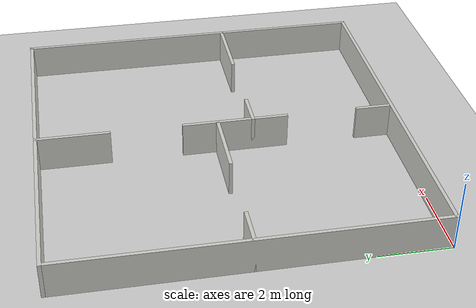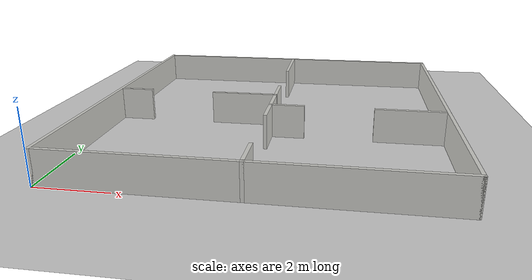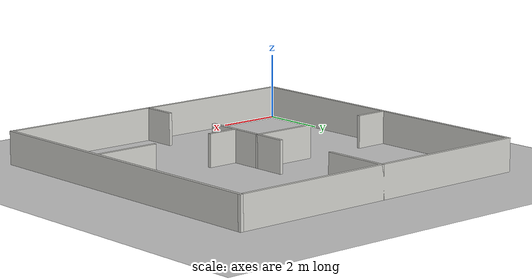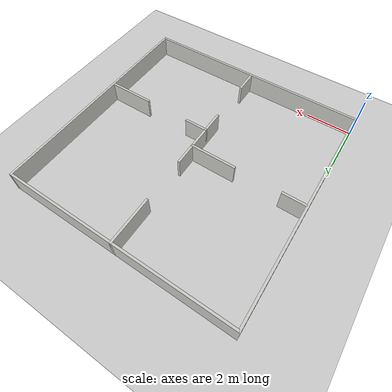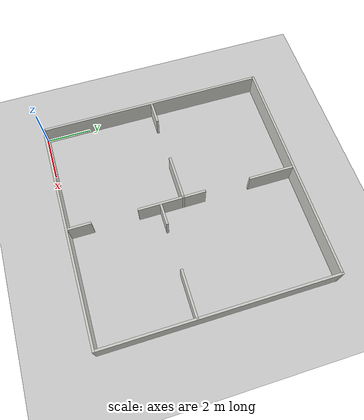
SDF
<sdf version="1.7">
 <world name="default">
  <light name="sun" type="directional">
   <pose>0 0 10 0 -0 0</pose>
   <diffuse>0.8 0.8 0.8 1</diffuse>
   <specular>0.2 0.2 0.2 1</specular>
   <attenuation>
    <range>1000</range>
    <constant>0.9</constant>
    <linear>0.01</linear>
    <quadratic>0.001</quadratic>
   </attenuation>
   <direction>-0.5 0.1 -0.9</direction>
   <spot><inner_angle>0</inner_angle><outer_angle>0</outer_angle><falloff>0</falloff></spot>
  </light>
  <model name="ground_plane">
   <static>1</static>
   <link name="link">
    <collision name="collision">
     <geometry><plane><normal>0 0 1</normal><size>100 100</size></plane></geometry>
     <surface><friction><ode><mu>100</mu><mu2>50</mu2></ode></friction></surface>
    </collision>
    <visual name="visual">
     <cast_shadows>0</cast_shadows>
     <geometry><plane><normal>0 0 1</normal><size>100 100</size></plane></geometry>
     <material>
      <script><uri>file://media/materials/scripts/gazebo.material</uri><name>Gazebo/Grey</name></script>
     </material>
    </visual>
   </link>
  </model>
  <gravity>0 0 -9.8</gravity>
  <magnetic_field>6e-06 2.3e-05 -4.2e-05</magnetic_field>
  <atmosphere type="adiabatic"/>
  <physics type="ode">
   <max_step_size>0.001</max_step_size>
   <real_time_factor>1</real_time_factor>
   <real_time_update_rate>1000</real_time_update_rate>
  </physics>
  <scene><ambient>0.4 0.4 0.4 1</ambient><background>0.7 0.7 0.7 1</background><shadows>1</shadows></scene>
  <spherical_coordinates>
   <surface_model>EARTH_WGS84</surface_model>
   <latitude_deg>0</latitude_deg>
   <longitude_deg>0</longitude_deg>
   <elevation>0</elevation>
   <heading_deg>0</heading_deg>
  </spherical_coordinates>
  <model name="FourRooms">
   <pose>5.1 5.1 0 0 -0 0</pose>
   <link name="Wall_0">
    <collision name="Wall_0_Collision">
     <geometry><box><size>10.2 0.1 1</size></box></geometry>
     <pose>0 0 0.5 0 -0 0</pose>
    </collision>
    <visual name="Wall_0_Visual">
     <pose>0 0 0.5 0 -0 0</pose>
     <geometry><box><size>10.2 0.1 1</size></box></geometry>
     <material>
      <script><uri>file://media/materials/scripts/gazebo.material</uri><name>Gazebo/CeilingTiled</name></script>
      <ambient>0.435294 0.796078 0.67451 1</ambient>
     </material>
     <meta><layer>0</layer></meta>
    </visual>
    <pose>0 -5.05 0 0 -0 0</pose>
   </link>
   <link name="Wall_11">
    <collision name="Wall_11_Collision">
     <geometry><box><size>1.1 0.1 1</size></box></geometry>
     <pose>0 0 0.5 0 -0 0</pose>
    </collision>
    <visual name="Wall_11_Visual">
     <pose>0 0 0.5 0 -0 0</pose>
     <geometry><box><size>1.1 0.1 1</size></box></geometry>
     <material>
      <script><uri>file://media/materials/scripts/gazebo.material</uri><name>Gazebo/CeilingTiled</name></script>
      <ambient>0.435294 0.796078 0.67451 1</ambient>
     </material>
     <meta><layer>0</layer></meta>
    </visual>
    <pose>-4.55 0 0 0 -0 0</pose>
   </link>
   <link name="Wall_13">
    <collision name="Wall_13_Collision">
     <geometry><box><size>2.05 0.1 1</size></box></geometry>
     <pose>0 0 0.5 0 -0 0</pose>
    </collision>
    <visual name="Wall_13_Visual">
     <pose>0 0 0.5 0 -0 0</pose>
     <geometry><box><size>2.05 0.1 1</size></box></geometry>
     <material>
      <script><uri>file://media/materials/scripts/gazebo.material</uri><name>Gazebo/CeilingTiled</name></script>
      <ambient>0.435294 0.796078 0.67451 1</ambient>
     </material>
     <meta><layer>0</layer></meta>
    </visual>
    <pose>-0.975 0 0 0 -0 0</pose>
   </link>
   <link name="Wall_15">
    <collision name="Wall_15_Collision">
     <geometry><box><size>2.1 0.1 1</size></box></geometry>
     <pose>0 0 0.5 0 -0 0</pose>
    </collision>
    <visual name="Wall_15_Visual">
     <pose>0 0 0.5 0 -0 0</pose>
     <geometry><box><size>2.1 0.1 1</size></box></geometry>
     <material>
      <script><uri>file://media/materials/scripts/gazebo.material</uri><name>Gazebo/CeilingTiled</name></script>
      <ambient>0.435294 0.796078 0.67451 1</ambient>
     </material>
     <meta><layer>0</layer></meta>
    </visual>
    <pose>0 4.05 0 0 -0 -1.5708</pose>
   </link>
   <link name="Wall_17">
    <collision name="Wall_17_Collision">
     <geometry><box><size>1.05 0.1 1</size></box></geometry>
     <pose>0 0 0.5 0 -0 0</pose>
    </collision>
    <visual name="Wall_17_Visual">
     <pose>0 0 0.5 0 -0 0</pose>
     <geometry><box><size>1.05 0.1 1</size></box></geometry>
     <material>
      <script><uri>file://media/materials/scripts/gazebo.material</uri><name>Gazebo/CeilingTiled</name></script>
      <ambient>0.435294 0.796078 0.67451 1</ambient>
     </material>
     <meta><layer>0</layer></meta>
    </visual>
    <pose>0 0.475 0 0 -0 -1.5708</pose>
   </link>
   <link name="Wall_19">
    <collision name="Wall_19_Collision">
     <geometry><box><size>2.1 0.1 1</size></box></geometry>
     <pose>0 0 0.5 0 -0 0</pose>
    </collision>
    <visual name="Wall_19_Visual">
     <pose>0 0 0.5 0 -0 0</pose>
     <geometry><box><size>2.1 0.1 1</size></box></geometry>
     <material>
      <script><uri>file://media/materials/scripts/gazebo.material</uri><name>Gazebo/CeilingTiled</name></script>
      <ambient>0.435294 0.796078 0.67451 1</ambient>
     </material>
     <meta><layer>0</layer></meta>
    </visual>
    <pose>4.05 -1 0 0 -0 3.14159</pose>
   </link>
   <link name="Wall_2">
    <collision name="Wall_2_Collision">
     <geometry><box><size>10.2 0.1 1</size></box></geometry>
     <pose>0 0 0.5 0 -0 0</pose>
    </collision>
    <visual name="Wall_2_Visual">
     <pose>0 0 0.5 0 -0 0</pose>
     <geometry><box><size>10.2 0.1 1</size></box></geometry>
     <material>
      <script><uri>file://media/materials/scripts/gazebo.material</uri><name>Gazebo/CeilingTiled</name></script>
      <ambient>0.435294 0.796078 0.67451 1</ambient>
     </material>
     <meta><layer>0</layer></meta>
    </visual>
    <pose>5.05 0 0 0 -0 1.5708</pose>
   </link>
   <link name="Wall_21">
    <collision name="Wall_21_Collision">
     <geometry><box><size>1.05 0.1 1</size></box></geometry>
     <pose>0 0 0.5 0 -0 0</pose>
    </collision>
    <visual name="Wall_21_Visual">
     <pose>0 0 0.5 0 -0 0</pose>
     <geometry><box><size>1.05 0.1 1</size></box></geometry>
     <material>
      <script><uri>file://media/materials/scripts/gazebo.material</uri><name>Gazebo/CeilingTiled</name></script>
      <ambient>0.435294 0.796078 0.67451 1</ambient>
     </material>
     <meta><layer>0</layer></meta>
    </visual>
    <pose>0.475 -1 0 0 -0 0</pose>
   </link>
   <link name="Wall_23">
    <collision name="Wall_23_Collision">
     <geometry><box><size>1.1 0.1 1</size></box></geometry>
     <pose>0 0 0.5 0 -0 0</pose>
    </collision>
    <visual name="Wall_23_Visual">
     <pose>0 0 0.5 0 -0 0</pose>
     <geometry><box><size>1.1 0.1 1</size></box></geometry>
     <material>
      <script><uri>file://media/materials/scripts/gazebo.material</uri><name>Gazebo/CeilingTiled</name></script>
      <ambient>0.435294 0.796078 0.67451 1</ambient>
     </material>
     <meta><layer>0</layer></meta>
    </visual>
    <pose>0 -4.55 0 0 -0 1.5708</pose>
   </link>
   <link name="Wall_25">
    <collision name="Wall_25_Collision">
     <geometry><box><size>2.05 0.1 1</size></box></geometry>
     <pose>0 0 0.5 0 -0 0</pose>
    </collision>
    <visual name="Wall_25_Visual">
     <pose>0 0 0.5 0 -0 0</pose>
     <geometry><box><size>2.05 0.1 1</size></box></geometry>
     <material>
      <script><uri>file://media/materials/scripts/gazebo.material</uri><name>Gazebo/CeilingTiled</name></script>
      <ambient>0.435294 0.796078 0.67451 1</ambient>
     </material>
     <meta><layer>0</layer></meta>
    </visual>
    <pose>0 -0.975 0 0 -0 1.5708</pose>
   </link>
   <link name="Wall_7">
    <collision name="Wall_7_Collision">
     <geometry><box><size>10.2 0.1 1</size></box></geometry>
     <pose>0 0 0.5 0 -0 0</pose>
    </collision>
    <visual name="Wall_7_Visual">
     <pose>0 0 0.5 0 -0 0</pose>
     <geometry><box><size>10.2 0.1 1</size></box></geometry>
     <material>
      <script><uri>file://media/materials/scripts/gazebo.material</uri><name>Gazebo/CeilingTiled</name></script>
      <ambient>0.435294 0.796078 0.67451 1</ambient>
     </material>
     <meta><layer>0</layer></meta>
    </visual>
    <pose>0 5.05 0 0 -0 3.14159</pose>
   </link>
   <link name="Wall_9">
    <collision name="Wall_9_Collision">
     <geometry><box><size>10.2 0.1 1</size></box></geometry>
     <pose>0 0 0.5 0 -0 0</pose>
    </collision>
    <visual name="Wall_9_Visual">
     <pose>0 0 0.5 0 -0 0</pose>
     <geometry><box><size>10.2 0.1 1</size></box></geometry>
     <material>
      <script><uri>file://media/materials/scripts/gazebo.material</uri><name>Gazebo/CeilingTiled</name></script>
      <ambient>0.435294 0.796078 0.67451 1</ambient>
     </material>
     <meta><layer>0</layer></meta>
    </visual>
    <pose>-5.05 0 0 0 -0 -1.5708</pose>
   </link>
   <static>1</static>
  </model>
 </world>
</sdf>
